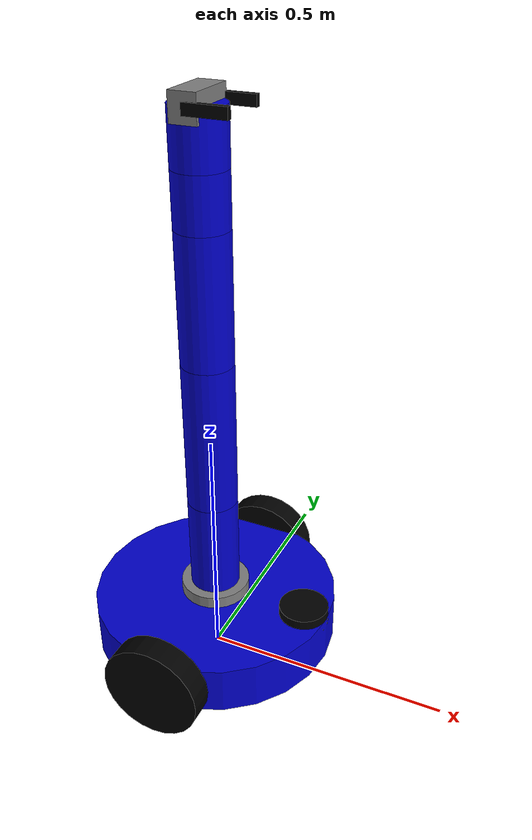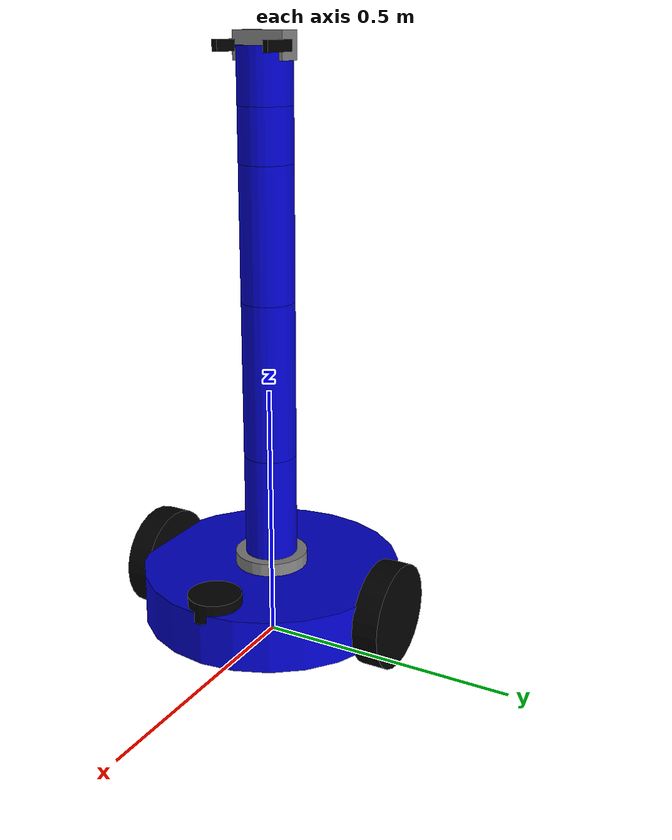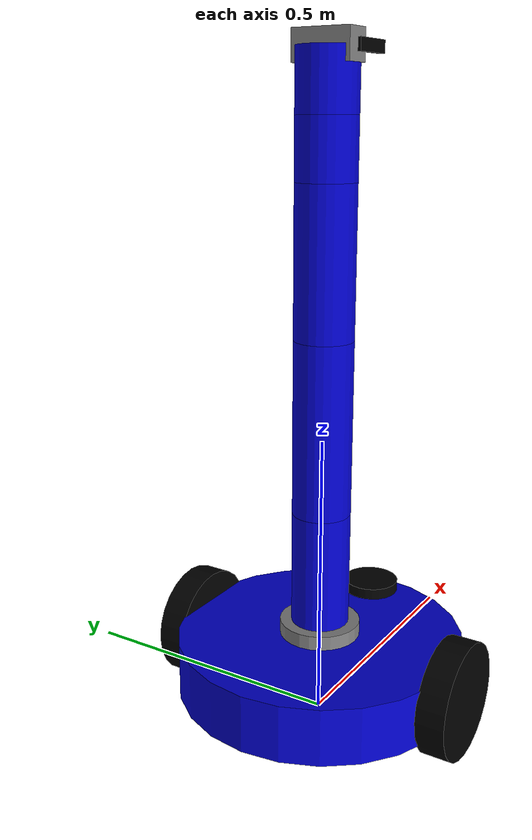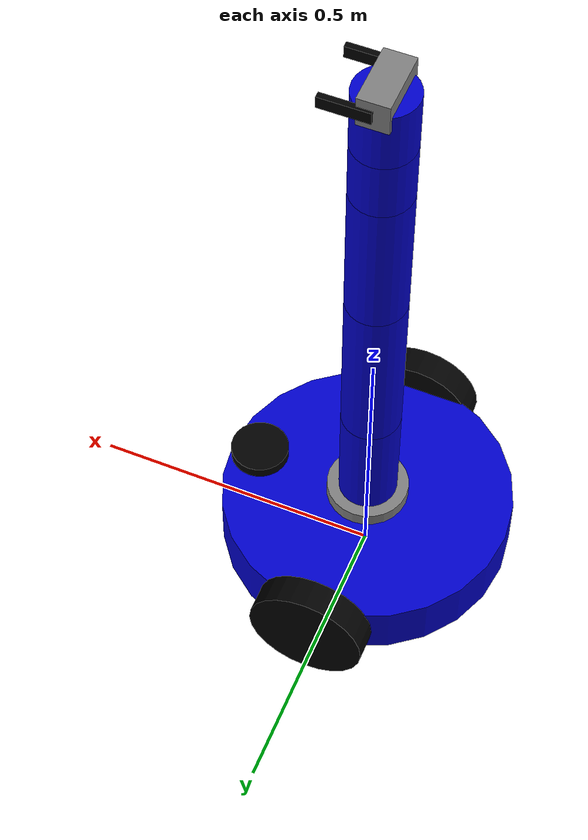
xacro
<?xml version="1.0"?>
<robot name="foundry_bot" xmlns:xacro="http://www.ros.org/wiki/xacro">
  <xacro:include filename="$(find ros2_foundry_description)/urdf/common.xacro"/>
  <xacro:include filename="$(find ros2_foundry_description)/urdf/base.urdf.xacro"/>
  <xacro:include filename="$(find ros2_foundry_description)/urdf/arm.urdf.xacro"/>
  <xacro:include filename="$(find ros2_foundry_description)/urdf/gripper.urdf.xacro"/>
  <xacro:include filename="$(find ros2_foundry_description)/urdf/sensors.urdf.xacro"/>
  <xacro:mobile_base prefix=""/>
  <xacro:robot_arm prefix="" parent="base_link"><origin xyz="0 0 0.05" rpy="0 0 0"/></xacro:robot_arm>
  <xacro:gripper prefix="" parent="tool0"><origin xyz="0 0 0" rpy="0 0 0"/></xacro:gripper>
  <xacro:lidar prefix="" parent="base_link"><origin xyz="0.2 0 0.05" rpy="0 0 0"/></xacro:lidar>
  <xacro:depth_camera prefix="" parent="link5"><origin xyz="0 0 0.05" rpy="0 ${PI/2} 0"/></xacro:depth_camera>
  <ros2_control name="FoundryBotSystem" type="system">
    <hardware><plugin>gazebo_ros2_control/GazeboSystem</plugin></hardware>
    <joint name="left_wheel_joint"><command_interface name="velocity"/><state_interface name="position"/><state_interface name="velocity"/></joint>
    <joint name="right_wheel_joint"><command_interface name="velocity"/><state_interface name="position"/><state_interface name="velocity"/></joint>
    <joint name="joint1"><command_interface name="position"/><state_interface name="position"/><state_interface name="velocity"/></joint>
    <joint name="joint2"><command_interface name="position"/><state_interface name="position"/><state_interface name="velocity"/></joint>
    <joint name="joint3"><command_interface name="position"/><state_interface name="position"/><state_interface name="velocity"/></joint>
    <joint name="joint4"><command_interface name="position"/><state_interface name="position"/><state_interface name="velocity"/></joint>
    <joint name="joint5"><command_interface name="position"/><state_interface name="position"/><state_interface name="velocity"/></joint>
    <joint name="joint6"><command_interface name="position"/><state_interface name="position"/><state_interface name="velocity"/></joint>
    <joint name="finger_left_joint"><command_interface name="position"/><state_interface name="position"/><state_interface name="velocity"/></joint>
    <joint name="finger_right_joint"><command_interface name="position"/><state_interface name="position"/><state_interface name="velocity"/></joint>
  </ros2_control>
  <gazebo>
    <plugin filename="libgazebo_ros2_control.so" name="gazebo_ros2_control">
        <robot_sim_type>gazebo_ros2_control/DefaultRobotHWSim</robot_sim_type>
        <parameters>$(find ros2_foundry_description)/config/ros2_controllers.yaml</parameters>
    </plugin>
  </gazebo>
</robot>

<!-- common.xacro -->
<robot xmlns:xacro="http://www.ros.org/wiki/xacro">

  <!-- Constants -->
  <xacro:property name="PI" value="3.1415926535897931"/>

  <!-- Materials -->
  <material name="blue">
    <color rgba="0.0 0.0 0.8 1.0"/>
  </material>
  <material name="black">
    <color rgba="0.0 0.0 0.0 1.0"/>
  </material>
  <material name="grey">
    <color rgba="0.5 0.5 0.5 1.0"/>
  </material>
  <material name="white">
    <color rgba="1.0 1.0 1.0 1.0"/>
  </material>

</robot>

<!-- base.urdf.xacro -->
<robot xmlns:xacro="http://www.ros.org/wiki/xacro">

  <xacro:macro name="mobile_base" params="prefix">
    <link name="${prefix}base_footprint"/>
    <joint name="${prefix}base_joint" type="fixed">
      <parent link="${prefix}base_footprint"/>
      <child link="${prefix}base_link"/>
      <origin xyz="0 0 0.1" rpy="0 0 0"/>
    </joint>
    <link name="${prefix}base_link">
      <visual><geometry><cylinder radius="0.25" length="0.1"/></geometry><material name="blue"/></visual>
      <collision><geometry><cylinder radius="0.25" length="0.1"/></geometry></collision>
      <inertial><mass value="5.0"/><inertia ixx="0.1" ixy="0" ixz="0" iyy="0.1" iyz="0" izz="0.1"/></inertial>
    </link>

    <xacro:macro name="wheel" params="side y_pos">
      <joint name="${prefix}${side}_wheel_joint" type="continuous"><parent link="${prefix}base_link"/><child link="${prefix}${side}_wheel_link"/><origin xyz="0 ${y_pos} 0" rpy="-${PI/2} 0 0"/><axis xyz="0 0 1"/></joint>
      <link name="${prefix}${side}_wheel_link">
        <visual><geometry><cylinder radius="0.1" length="0.05"/></geometry><material name="black"/></visual>
        <collision><geometry><cylinder radius="0.1" length="0.05"/></geometry></collision>
        <inertial><mass value="0.5"/><inertia ixx="0.01" ixy="0" ixz="0" iyy="0.01" iyz="0" izz="0.01"/></inertial>
      </link>
    </xacro:macro>
    <xacro:wheel side="left" y_pos="0.255"/>
    <xacro:wheel side="right" y_pos="-0.255"/>

    <xacro:macro name="caster_wheel" params="x_pos">
        <joint name="${prefix}caster_${x_pos}_joint" type="fixed"><parent link="${prefix}base_link"/><child link="${prefix}caster_${x_pos}_link"/><origin xyz="${x_pos} 0 -0.05" rpy="0 0 0"/></joint>
        <link name="${prefix}caster_${x_pos}_link">
            <visual><geometry><sphere radius="0.05"/></geometry><material name="black"/></visual>
            <collision><geometry><sphere radius="0.05"/></geometry></collision>
            <inertial><mass value="0.2"/><inertia ixx="0.001" ixy="0" ixz="0" iyy="0.001" iyz="0" izz="0.001"/></inertial>
        </link>
    </xacro:macro>
    <xacro:caster_wheel x_pos="0.15"/>
    <xacro:caster_wheel x_pos="-0.15"/>
  </xacro:macro>
</robot>

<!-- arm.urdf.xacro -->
<robot xmlns:xacro="http://www.ros.org/wiki/xacro">
  <xacro:macro name="robot_arm" params="prefix parent *origin">
    <joint name="${prefix}arm_base_joint" type="fixed"><parent link="${parent}"/><child link="${prefix}arm_base_link"/><xacro:insert_block name="origin"/></joint>
    <link name="${prefix}arm_base_link">
      <visual><geometry><cylinder radius="0.07" length="0.05"/></geometry><material name="grey"/></visual>
      <collision><geometry><cylinder radius="0.07" length="0.05"/></geometry></collision>
      <inertial><mass value="0.5"/><inertia ixx="0.01" ixy="0" ixz="0" iyy="0.01" iyz="0" izz="0.01"/></inertial>
    </link>
    <xacro:macro name="arm_joint" params="name parent child joint_type axis_xyz origin_xyz limit_lower limit_upper">
      <joint name="${name}" type="${joint_type}"><parent link="${parent}"/><child link="${child}"/><origin xyz="${origin_xyz}" rpy="0 0 0"/><axis xyz="${axis_xyz}"/><limit lower="${limit_lower}" upper="${limit_upper}" effort="100" velocity="1.0"/></joint>
    </xacro:macro>
    <xacro:macro name="arm_link" params="name length radius mass">
       <link name="${name}">
        <visual><geometry><cylinder radius="${radius}" length="${length}"/></geometry><origin xyz="0 0 ${length/2}" rpy="0 0 0"/><material name="blue"/></visual>
        <collision><geometry><cylinder radius="${radius}" length="${length}"/></geometry><origin xyz="0 0 ${length/2}" rpy="0 0 0"/></collision>
        <inertial><mass value="${mass}"/><inertia ixx="0.01" ixy="0" ixz="0" iyy="0.01" iyz="0" izz="0.01"/></inertial>
      </link>
    </xacro:macro>
    <xacro:arm_joint name="${prefix}joint1" parent="${prefix}arm_base_link" child="${prefix}link1" joint_type="revolute" axis_xyz="0 0 1" origin_xyz="0 0 0.025" limit_lower="-${PI}" limit_upper="${PI}"/>
    <xacro:arm_link name="${prefix}link1" length="0.2" radius="0.05" mass="1.0"/>
    <xacro:arm_joint name="${prefix}joint2" parent="${prefix}link1" child="${prefix}link2" joint_type="revolute" axis_xyz="0 1 0" origin_xyz="0 0 0.2" limit_lower="-${PI/2}" limit_upper="${PI/2}"/>
    <xacro:arm_link name="${prefix}link2" length="0.3" radius="0.05" mass="1.5"/>
    <xacro:arm_joint name="${prefix}joint3" parent="${prefix}link2" child="${prefix}link3" joint_type="revolute" axis_xyz="0 1 0" origin_xyz="0 0 0.3" limit_lower="-${PI/2}" limit_upper="${PI/2}"/>
    <xacro:arm_link name="${prefix}link3" length="0.25" radius="0.05" mass="1.2"/>
    <xacro:arm_joint name="${prefix}joint4" parent="${prefix}link3" child="${prefix}link4" joint_type="revolute" axis_xyz="1 0 0" origin_xyz="0 0 0.25" limit_lower="-${PI}" limit_upper="${PI}"/>
    <xacro:arm_link name="${prefix}link4" length="0.1" radius="0.05" mass="0.5"/>
    <xacro:arm_joint name="${prefix}joint5" parent="${prefix}link4" child="${prefix}link5" joint_type="revolute" axis_xyz="0 1 0" origin_xyz="0 0 0.1" limit_lower="-${PI/2}" limit_upper="${PI/2}"/>
    <xacro:arm_link name="${prefix}link5" length="0.1" radius="0.05" mass="0.5"/>
    <xacro:arm_joint name="${prefix}joint6" parent="${prefix}link5" child="${prefix}tool0" joint_type="revolute" axis_xyz="1 0 0" origin_xyz="0 0 0.1" limit_lower="-${PI}" limit_upper="${PI}"/>

    <!-- == VITAL FIX: ADDED INERTIAL TAG TO tool0 LINK    == -->
    <link name="${prefix}tool0">
      <inertial>
        <mass value="0.001" />
        <inertia ixx="0.0001" ixy="0.0" ixz="0.0" iyy="0.0001" iyz="0.0" izz="0.0001" />
      </inertial>
    </link>
    <!-- ============ END OF VITAL FIX ====================== -->

  </xacro:macro>
</robot>

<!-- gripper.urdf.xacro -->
<robot xmlns:xacro="http://www.ros.org/wiki/xacro">
  <xacro:macro name="gripper" params="prefix parent *origin">
    <joint name="${prefix}gripper_base_joint" type="fixed"><parent link="${parent}"/><child link="${prefix}gripper_base"/><xacro:insert_block name="origin"/></joint>
    <link name="${prefix}gripper_base">
        <visual><geometry><box size="0.05 0.1 0.05"/></geometry><material name="grey"/></visual>
        <collision><geometry><box size="0.05 0.1 0.05"/></geometry></collision>
        <inertial><mass value="0.2"/><inertia ixx="0.001" ixy="0" ixz="0" iyy="0.001" iyz="0" izz="0.001"/></inertial>
    </link>
    <xacro:macro name="finger" params="side y_pos">
        <joint name="${prefix}finger_${side}_joint" type="prismatic"><parent link="${prefix}gripper_base"/><child link="${prefix}finger_${side}_link"/><origin xyz="0 ${y_pos} 0" rpy="0 0 0"/><axis xyz="0 1 0"/><limit lower="0.0" upper="0.04" effort="10" velocity="0.1"/></joint>
        <link name="${prefix}finger_${side}_link">
            <visual><geometry><box size="0.08 0.01 0.02"/></geometry><origin xyz="0.04 0 0"/><material name="black"/></visual>
            <collision><geometry><box size="0.08 0.01 0.02"/></geometry><origin xyz="0.04 0 0"/></collision>
            <inertial><mass value="0.05"/><inertia ixx="0.0001" ixy="0" ixz="0" iyy="0.0001" iyz="0" izz="0.0001"/></inertial>
        </link>
    </xacro:macro>
    <xacro:finger side="left" y_pos="0.05"/>
    <xacro:finger side="right" y_pos="-0.05"/>
  </xacro:macro>
</robot>

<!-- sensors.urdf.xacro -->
<robot xmlns:xacro="http://www.ros.org/wiki/xacro">
  <xacro:macro name="lidar" params="prefix parent *origin">
    <joint name="${prefix}lidar_joint" type="fixed"><parent link="${parent}"/><child link="${prefix}lidar_link"/><xacro:insert_block name="origin"/></joint>
    <link name="${prefix}lidar_link">
      <visual><geometry><cylinder radius="0.05" length="0.04"/></geometry><material name="black"/></visual>
      <collision><geometry><cylinder radius="0.05" length="0.04"/></geometry></collision>
      <inertial><mass value="0.1"/><inertia ixx="0.001" ixy="0" ixz="0" iyy="0.001" iyz="0" izz="0.001"/></inertial>
    </link>
  </xacro:macro>
  <xacro:macro name="depth_camera" params="prefix parent *origin">
    <joint name="${prefix}camera_joint" type="fixed"><parent link="${parent}"/><child link="${prefix}camera_link"/><xacro:insert_block name="origin"/></joint>
    <link name="${prefix}camera_link">
      <visual><geometry><box size="0.02 0.08 0.03"/></geometry><material name="black"/></visual>
      <collision><geometry><box size="0.02 0.08 0.03"/></geometry></collision>
      <inertial><mass value="0.05"/><inertia ixx="0.0001" ixy="0" ixz="0" iyy="0.0001" iyz="0" izz="0.0001"/></inertial>
    </link>
  </xacro:macro>
</robot>
